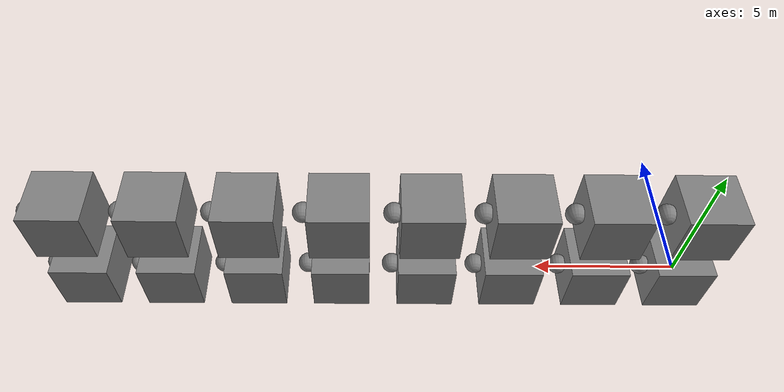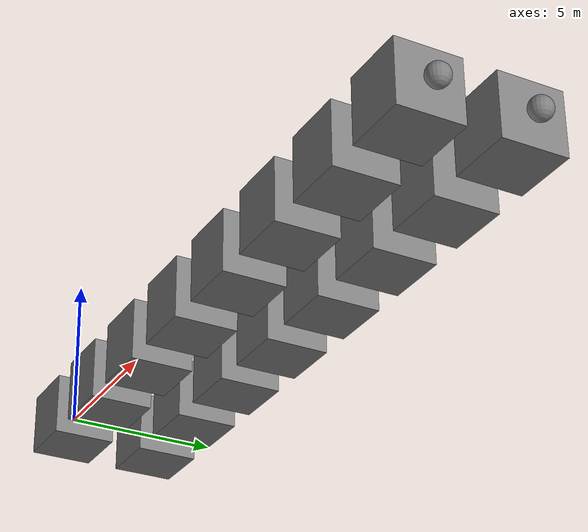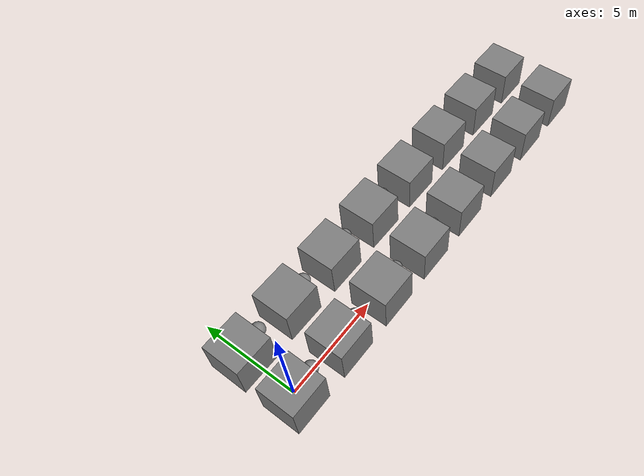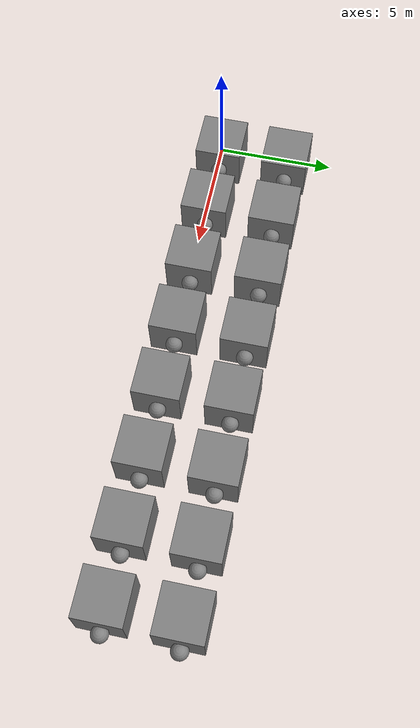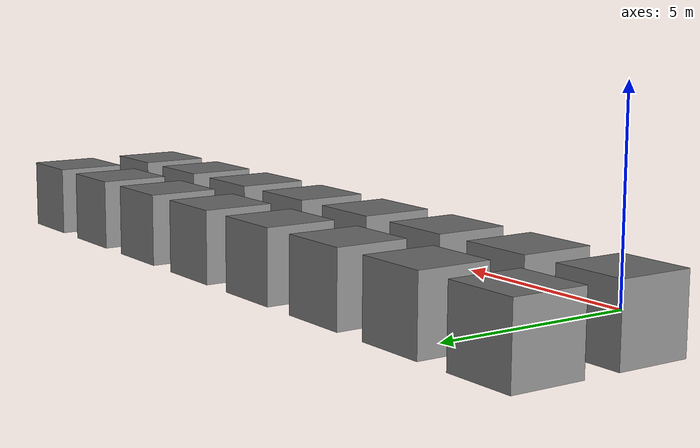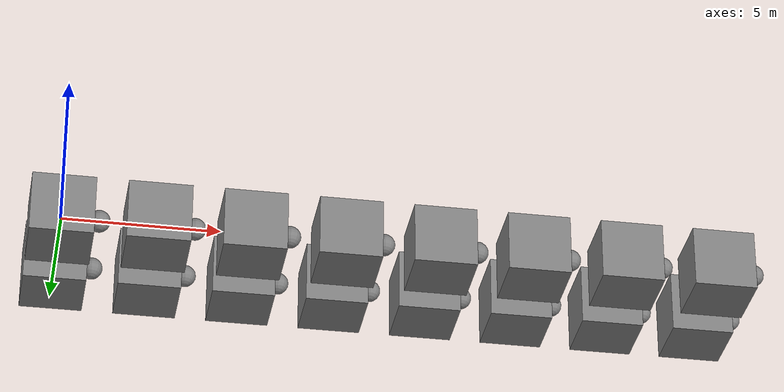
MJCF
<mujoco><asset><mesh name="cube" vertex="-1.0 -1.0 -1.0 -1.0 -1.0 1.0 -1.0 1.0 -1.0 -1.0 1.0 1.0 1.0 -1.0 -1.0 1.0 -1.0 1.0 1.0 1.0 -1.0 1.0 1.0 1.0"/></asset><worldbody><geom type="mesh" mesh="cube" pos="0 0 0"/><body pos="1.2 0.1 .07"><freejoint/><geom type="sphere" size=".35"/></body><geom type="mesh" mesh="cube" pos="3 0 0"/><body pos="4.2 0.1 .07"><freejoint/><geom type="sphere" size=".35"/></body><geom type="mesh" mesh="cube" pos="6 0 0"/><body pos="7.2 0.1 .07"><freejoint/><geom type="sphere" size=".35"/></body><geom type="mesh" mesh="cube" pos="9 0 0"/><body pos="10.2 0.1 .07"><freejoint/><geom type="sphere" size=".35"/></body><geom type="mesh" mesh="cube" pos="12 0 0"/><body pos="13.2 0.1 .07"><freejoint/><geom type="sphere" size=".35"/></body><geom type="mesh" mesh="cube" pos="15 0 0"/><body pos="16.2 0.1 .07"><freejoint/><geom type="sphere" size=".35"/></body><geom type="mesh" mesh="cube" pos="18 0 0"/><body pos="19.2 0.1 .07"><freejoint/><geom type="sphere" size=".35"/></body><geom type="mesh" mesh="cube" pos="21 0 0"/><body pos="22.2 0.1 .07"><freejoint/><geom type="sphere" size=".35"/></body><geom type="mesh" mesh="cube" pos="0 3 0"/><body pos="1.2 3.1 .07"><freejoint/><geom type="sphere" size=".35"/></body><geom type="mesh" mesh="cube" pos="3 3 0"/><body pos="4.2 3.1 .07"><freejoint/><geom type="sphere" size=".35"/></body><geom type="mesh" mesh="cube" pos="6 3 0"/><body pos="7.2 3.1 .07"><freejoint/><geom type="sphere" size=".35"/></body><geom type="mesh" mesh="cube" pos="9 3 0"/><body pos="10.2 3.1 .07"><freejoint/><geom type="sphere" size=".35"/></body><geom type="mesh" mesh="cube" pos="12 3 0"/><body pos="13.2 3.1 .07"><freejoint/><geom type="sphere" size=".35"/></body><geom type="mesh" mesh="cube" pos="15 3 0"/><body pos="16.2 3.1 .07"><freejoint/><geom type="sphere" size=".35"/></body><geom type="mesh" mesh="cube" pos="18 3 0"/><body pos="19.2 3.1 .07"><freejoint/><geom type="sphere" size=".35"/></body><geom type="mesh" mesh="cube" pos="21 3 0"/><body pos="22.2 3.1 .07"><freejoint/><geom type="sphere" size=".35"/></body></worldbody></mujoco>
